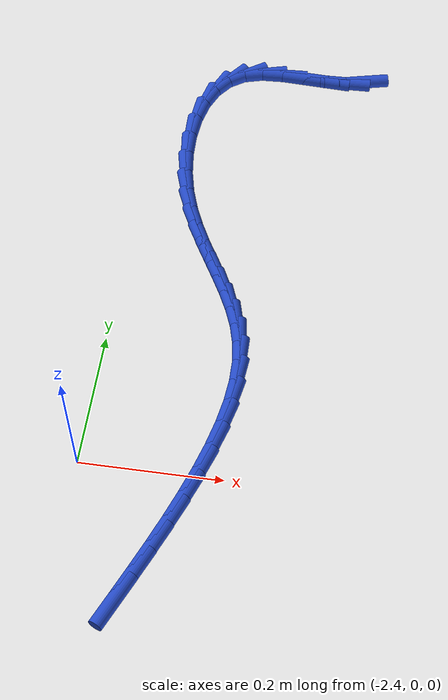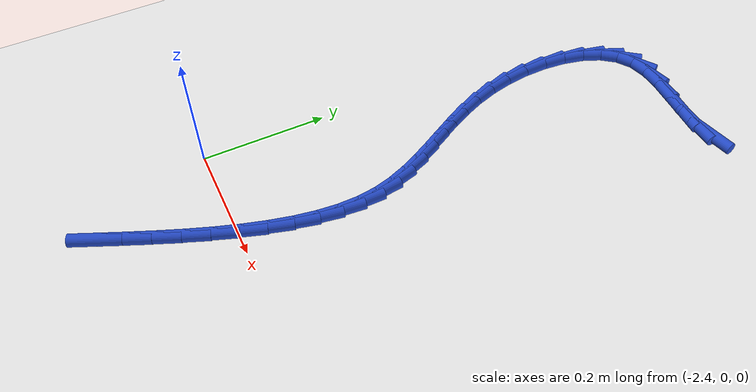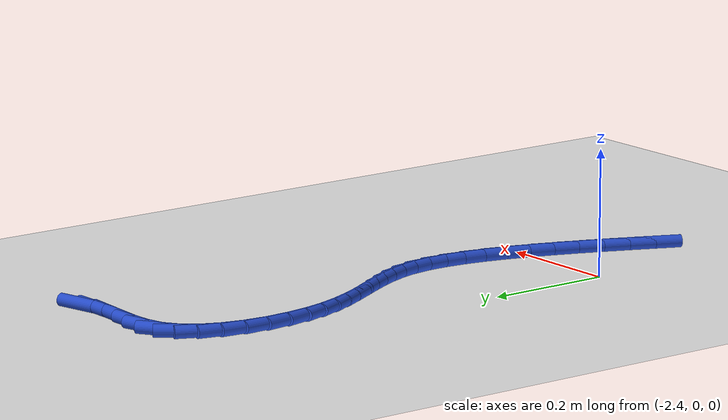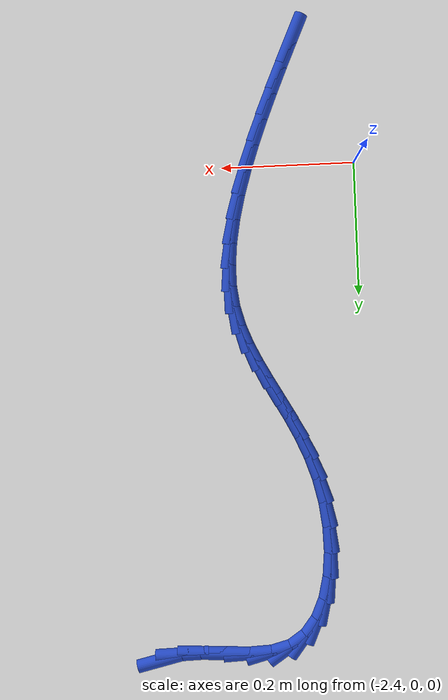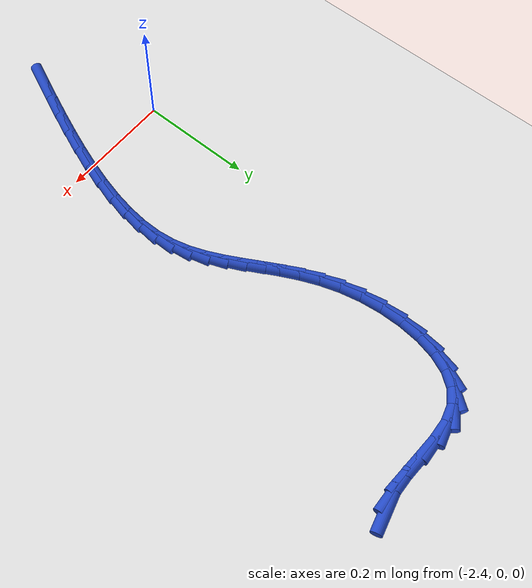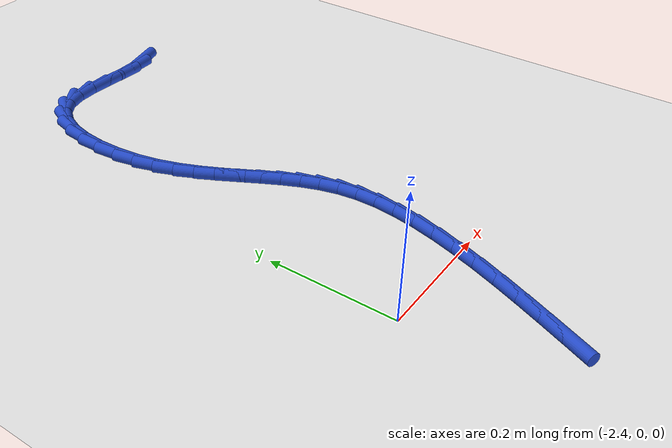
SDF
<sdf version="1.6">
 <world name="default">
  <model name="ground_plane">
   <static>1</static>
   <link name="link">
    <collision name="collision">
     <geometry><plane><normal>0 0 1</normal><size>100 100</size></plane></geometry>
     <surface><friction><ode><mu>100</mu><mu2>50</mu2></ode></friction></surface>
    </collision>
    <visual name="visual">
     <cast_shadows>0</cast_shadows>
     <geometry><plane><normal>0 0 1</normal><size>100 100</size></plane></geometry>
     <material>
      <script><uri>file://media/materials/scripts/gazebo.material</uri><name>Gazebo/WhiteGlow</name></script>
     </material>
    </visual>
   </link>
  </model>
  <model name="line">
   <link name="link_98">
    <pose>-2.082372993226611 0.7379644857235055 0.01 0 1.57 0.22834649119505881</pose>
    <collision name="collision">
     <geometry><cylinder><radius>0.01</radius><length>0.08</length></cylinder></geometry>
    </collision>
    <visual name="visual">
     <material>
      <script><name>Gazebo/Blue</name><uri>file://media/materials/scripts/gazebo.material</uri></script>
     </material>
     <geometry><cylinder><radius>0.01</radius><length>0.08</length></cylinder></geometry>
    </visual>
   </link>
   <link name="link_99">
    <pose>-2.110712108835399 0.7313784787570278 0.01 0 1.57 0.024255136708917185</pose>
    <collision name="collision">
     <geometry><cylinder><radius>0.01</radius><length>0.08</length></cylinder></geometry>
    </collision>
    <visual name="visual">
     <material>
      <script><name>Gazebo/Blue</name><uri>file://media/materials/scripts/gazebo.material</uri></script>
     </material>
     <geometry><cylinder><radius>0.01</radius><length>0.08</length></cylinder></geometry>
    </visual>
   </link>
   <link name="link_100">
    <pose>-2.143283245592538 0.7305883064202752 0.01 0 1.57 -0.057521046399457224</pose>
    <collision name="collision">
     <geometry><cylinder><radius>0.01</radius><length>0.08</length></cylinder></geometry>
    </collision>
    <visual name="visual">
     <material>
      <script><name>Gazebo/Blue</name><uri>file://media/materials/scripts/gazebo.material</uri></script>
     </material>
     <geometry><cylinder><radius>0.01</radius><length>0.08</length></cylinder></geometry>
    </visual>
   </link>
   <link name="link_101">
    <pose>-2.17804192233154 0.732589869869676 0.01 0 1.57 -0.051219101169951695</pose>
    <collision name="collision">
     <geometry><cylinder><radius>0.01</radius><length>0.08</length></cylinder></geometry>
    </collision>
    <visual name="visual">
     <material>
      <script><name>Gazebo/Blue</name><uri>file://media/materials/scripts/gazebo.material</uri></script>
     </material>
     <geometry><cylinder><radius>0.01</radius><length>0.08</length></cylinder></geometry>
    </visual>
   </link>
   <link name="link_102">
    <pose>-2.2129436578859147 0.7343790702616583 0.01 0 1.57 0.0432230013375099</pose>
    <collision name="collision">
     <geometry><cylinder><radius>0.01</radius><length>0.08</length></cylinder></geometry>
    </collision>
    <visual name="visual">
     <material>
      <script><name>Gazebo/Blue</name><uri>file://media/materials/scripts/gazebo.material</uri></script>
     </material>
     <geometry><cylinder><radius>0.01</radius><length>0.08</length></cylinder></geometry>
    </visual>
   </link>
   <link name="link_103">
    <pose>-2.2459439710891758 0.7329518087526508 0.01 0 1.57 0.25738337182317034</pose>
    <collision name="collision">
     <geometry><cylinder><radius>0.01</radius><length>0.08</length></cylinder></geometry>
    </collision>
    <visual name="visual">
     <material>
      <script><name>Gazebo/Blue</name><uri>file://media/materials/scripts/gazebo.material</uri></script>
     </material>
     <geometry><cylinder><radius>0.01</radius><length>0.08</length></cylinder></geometry>
    </visual>
   </link>
   <link name="link_104">
    <pose>-2.274998413799655 0.7253040494161294 0.01 0 1.57 0.5977553533025661</pose>
    <collision name="collision">
     <geometry><cylinder><radius>0.01</radius><length>0.08</length></cylinder></geometry>
    </collision>
    <visual name="visual">
     <material>
      <script><name>Gazebo/Blue</name><uri>file://media/materials/scripts/gazebo.material</uri></script>
     </material>
     <geometry><cylinder><radius>0.01</radius><length>0.08</length></cylinder></geometry>
    </visual>
   </link>
   <link name="link_105">
    <pose>-2.2985146517242385 0.7092930983776918 0.01 0 1.57 0.9177533596497537</pose>
    <collision name="collision">
     <geometry><cylinder><radius>0.01</radius><length>0.08</length></cylinder></geometry>
    </collision>
    <visual name="visual">
     <material>
      <script><name>Gazebo/Blue</name><uri>file://media/materials/scripts/gazebo.material</uri></script>
     </material>
     <geometry><cylinder><radius>0.01</radius><length>0.08</length></cylinder></geometry>
    </visual>
   </link>
   <link name="link_106">
    <pose>-2.316487404526655 0.6857998283190092 0.01 0 1.57 1.1613645098460448</pose>
    <collision name="collision">
     <geometry><cylinder><radius>0.01</radius><length>0.08</length></cylinder></geometry>
    </collision>
    <visual name="visual">
     <material>
      <script><name>Gazebo/Blue</name><uri>file://media/materials/scripts/gazebo.material</uri></script>
     </material>
     <geometry><cylinder><radius>0.01</radius><length>0.08</length></cylinder></geometry>
    </visual>
   </link>
   <link name="link_107">
    <pose>-2.329259437092392 0.6563681882387081 0.01 0 1.57 1.3409664675486768</pose>
    <collision name="collision">
     <geometry><cylinder><radius>0.01</radius><length>0.08</length></cylinder></geometry>
    </collision>
    <visual name="visual">
     <material>
      <script><name>Gazebo/Blue</name><uri>file://media/materials/scripts/gazebo.material</uri></script>
     </material>
     <geometry><cylinder><radius>0.01</radius><length>0.08</length></cylinder></geometry>
    </visual>
   </link>
   <link name="link_108">
    <pose>-2.33717351430694 0.6225421271354146 0.01 0 1.57 1.4783882853516774</pose>
    <collision name="collision">
     <geometry><cylinder><radius>0.01</radius><length>0.08</length></cylinder></geometry>
    </collision>
    <visual name="visual">
     <material>
      <script><name>Gazebo/Blue</name><uri>file://media/materials/scripts/gazebo.material</uri></script>
     </material>
     <geometry><cylinder><radius>0.01</radius><length>0.08</length></cylinder></geometry>
    </visual>
   </link>
   <link name="link_109">
    <pose>-2.3405724010557862 0.5858655940077543 0.01 0 1.57 -1.5504337758303675</pose>
    <collision name="collision">
     <geometry><cylinder><radius>0.01</radius><length>0.08</length></cylinder></geometry>
    </collision>
    <visual name="visual">
     <material>
      <script><name>Gazebo/Blue</name><uri>file://media/materials/scripts/gazebo.material</uri></script>
     </material>
     <geometry><cylinder><radius>0.01</radius><length>0.08</length></cylinder></geometry>
    </visual>
   </link>
   <link name="link_110">
    <pose>-2.339798862224419 0.5478825378543546 0.01 0 1.57 -1.4494423972208557</pose>
    <collision name="collision">
     <geometry><cylinder><radius>0.01</radius><length>0.08</length></cylinder></geometry>
    </collision>
    <visual name="visual">
     <material>
      <script><name>Gazebo/Blue</name><uri>file://media/materials/scripts/gazebo.material</uri></script>
     </material>
     <geometry><cylinder><radius>0.01</radius><length>0.08</length></cylinder></geometry>
    </visual>
   </link>
   <link name="link_111">
    <pose>-2.3351956626983283 0.5101369076738415 0.01 0 1.57 -1.3496500362377342</pose>
    <collision name="collision">
     <geometry><cylinder><radius>0.01</radius><length>0.08</length></cylinder></geometry>
    </collision>
    <visual name="visual">
     <material>
      <script><name>Gazebo/Blue</name><uri>file://media/materials/scripts/gazebo.material</uri></script>
     </material>
     <geometry><cylinder><radius>0.01</radius><length>0.08</length></cylinder></geometry>
    </visual>
   </link>
   <link name="link_112">
    <pose>-2.327107709799297 0.4741622049599901 0.01 0 1.57 -1.2504720265986438</pose>
    <collision name="collision">
     <geometry><cylinder><radius>0.01</radius><length>0.08</length></cylinder></geometry>
    </collision>
    <visual name="visual">
     <material>
      <script><name>Gazebo/Blue</name><uri>file://media/materials/scripts/gazebo.material</uri></script>
     </material>
     <geometry><cylinder><radius>0.01</radius><length>0.08</length></cylinder></geometry>
    </visual>
   </link>
   <link name="link_113">
    <pose>-2.316028685460143 0.44076643777023444 0.01 0 1.57 -1.1668668810124845</pose>
    <collision name="collision">
     <geometry><cylinder><radius>0.01</radius><length>0.08</length></cylinder></geometry>
    </collision>
    <visual name="visual">
     <material>
      <script><name>Gazebo/Blue</name><uri>file://media/materials/scripts/gazebo.material</uri></script>
     </material>
     <geometry><cylinder><radius>0.01</radius><length>0.08</length></cylinder></geometry>
    </visual>
   </link>
   <link name="link_114">
    <pose>-2.302695323195141 0.40957238285262476 0.01 0 1.57 -1.10473496936146</pose>
    <collision name="collision">
     <geometry><cylinder><radius>0.01</radius><length>0.08</length></cylinder></geometry>
    </collision>
    <visual name="visual">
     <material>
      <script><name>Gazebo/Blue</name><uri>file://media/materials/scripts/gazebo.material</uri></script>
     </material>
     <geometry><cylinder><radius>0.01</radius><length>0.08</length></cylinder></geometry>
    </visual>
   </link>
   <link name="link_115">
    <pose>-2.287866790322985 0.38009341940580776 0.01 0 1.57 -1.0672260196917696</pose>
    <collision name="collision">
     <geometry><cylinder><radius>0.01</radius><length>0.08</length></cylinder></geometry>
    </collision>
    <visual name="visual">
     <material>
      <script><name>Gazebo/Blue</name><uri>file://media/materials/scripts/gazebo.material</uri></script>
     </material>
     <geometry><cylinder><radius>0.01</radius><length>0.08</length></cylinder></geometry>
    </visual>
   </link>
   <link name="link_116">
    <pose>-2.2723022541623714 0.3518429266284306 0.01 0 1.57 -1.056537647933757</pose>
    <collision name="collision">
     <geometry><cylinder><radius>0.01</radius><length>0.08</length></cylinder></geometry>
    </collision>
    <visual name="visual">
     <material>
      <script><name>Gazebo/Blue</name><uri>file://media/materials/scripts/gazebo.material</uri></script>
     </material>
     <geometry><cylinder><radius>0.01</radius><length>0.08</length></cylinder></geometry>
    </visual>
   </link>
   <link name="link_117">
    <pose>-2.256760882031995 0.3243342837191399 0.01 0 1.57 -1.074465069633949</pose>
    <collision name="collision">
     <geometry><cylinder><radius>0.01</radius><length>0.08</length></cylinder></geometry>
    </collision>
    <visual name="visual">
     <material>
      <script><name>Gazebo/Blue</name><uri>file://media/materials/scripts/gazebo.material</uri></script>
     </material>
     <geometry><cylinder><radius>0.01</radius><length>0.08</length></cylinder></geometry>
    </visual>
   </link>
   <link name="link_118">
    <pose>-2.242001841250551 0.2970808698765836 0.01 0 1.57 -1.122542210322693</pose>
    <collision name="collision">
     <geometry><cylinder><radius>0.01</radius><length>0.08</length></cylinder></geometry>
    </collision>
    <visual name="visual">
     <material>
      <script><name>Gazebo/Blue</name><uri>file://media/materials/scripts/gazebo.material</uri></script>
     </material>
     <geometry><cylinder><radius>0.01</radius><length>0.08</length></cylinder></geometry>
    </visual>
   </link>
   <link name="link_119">
    <pose>-2.228784299136736 0.2695960642994085 0.01 0 1.57 -1.2014732704470679</pose>
    <collision name="collision">
     <geometry><cylinder><radius>0.01</radius><length>0.08</length></cylinder></geometry>
    </collision>
    <visual name="visual">
     <material>
      <script><name>Gazebo/Blue</name><uri>file://media/materials/scripts/gazebo.material</uri></script>
     </material>
     <geometry><cylinder><radius>0.01</radius><length>0.08</length></cylinder></geometry>
    </visual>
   </link>
   <link name="link_120">
    <pose>-2.217867423009243 0.24139324618626187 0.01 0 1.57 -1.3097160145641464</pose>
    <collision name="collision">
     <geometry><cylinder><radius>0.01</radius><length>0.08</length></cylinder></geometry>
    </collision>
    <visual name="visual">
     <material>
      <script><name>Gazebo/Blue</name><uri>file://media/materials/scripts/gazebo.material</uri></script>
     </material>
     <geometry><cylinder><radius>0.01</radius><length>0.08</length></cylinder></geometry>
    </visual>
   </link>
   <link name="link_121">
    <pose>-2.2100103801867705 0.21198579473579068 0.01 0 1.57 -1.4398321201363131</pose>
    <collision name="collision">
     <geometry><cylinder><radius>0.01</radius><length>0.08</length></cylinder></geometry>
    </collision>
    <visual name="visual">
     <material>
      <script><name>Gazebo/Blue</name><uri>file://media/materials/scripts/gazebo.material</uri></script>
     </material>
     <geometry><cylinder><radius>0.01</radius><length>0.08</length></cylinder></geometry>
    </visual>
   </link>
   <link name="link_122">
    <pose>-2.2059184668456706 0.18092011402660998 0.01 0 1.57 -1.5625714356276101</pose>
    <collision name="collision">
     <geometry><cylinder><radius>0.01</radius><length>0.08</length></cylinder></geometry>
    </collision>
    <visual name="visual">
     <material>
      <script><name>Gazebo/Blue</name><uri>file://media/materials/scripts/gazebo.material</uri></script>
     </material>
     <geometry><cylinder><radius>0.01</radius><length>0.08</length></cylinder></geometry>
    </visual>
   </link>
   <link name="link_123">
    <pose>-2.20564884736438 0.14813993542425732 0.01 0 1.57 1.4782866486761157</pose>
    <collision name="collision">
     <geometry><cylinder><radius>0.01</radius><length>0.08</length></cylinder></geometry>
    </collision>
    <visual name="visual">
     <material>
      <script><name>Gazebo/Blue</name><uri>file://media/materials/scripts/gazebo.material</uri></script>
     </material>
     <geometry><cylinder><radius>0.01</radius><length>0.08</length></cylinder></geometry>
    </visual>
   </link>
   <link name="link_124">
    <pose>-2.2088299071443727 0.1138518466888383 0.01 0 1.57 1.3968647717767044</pose>
    <collision name="collision">
     <geometry><cylinder><radius>0.01</radius><length>0.08</length></cylinder></geometry>
    </collision>
    <visual name="visual">
     <material>
      <script><name>Gazebo/Blue</name><uri>file://media/materials/scripts/gazebo.material</uri></script>
     </material>
     <geometry><cylinder><radius>0.01</radius><length>0.08</length></cylinder></geometry>
    </visual>
   </link>
   <link name="link_125">
    <pose>-2.215082392174799 0.07826711880535453 0.01 0 1.57 1.3315459270198577</pose>
    <collision name="collision">
     <geometry><cylinder><radius>0.01</radius><length>0.08</length></cylinder></geometry>
    </collision>
    <visual name="visual">
     <material>
      <script><name>Gazebo/Blue</name><uri>file://media/materials/scripts/gazebo.material</uri></script>
     </material>
     <geometry><cylinder><radius>0.01</radius><length>0.08</length></cylinder></geometry>
    </visual>
   </link>
   <link name="link_126">
    <pose>-2.2240270484448095 0.04159702275880747 0.01 0 1.57 1.2794784439753353</pose>
    <collision name="collision">
     <geometry><cylinder><radius>0.01</radius><length>0.08</length></cylinder></geometry>
    </collision>
    <visual name="visual">
     <material>
      <script><name>Gazebo/Blue</name><uri>file://media/materials/scripts/gazebo.material</uri></script>
     </material>
     <geometry><cylinder><radius>0.01</radius><length>0.08</length></cylinder></geometry>
    </visual>
   </link>
   <link name="link_127">
    <pose>-2.2352846219435536 0.004052829534200034 0.01 0 1.57 1.2383532279342762</pose>
    <collision name="collision">
     <geometry><cylinder><radius>0.01</radius><length>0.08</length></cylinder></geometry>
    </collision>
    <visual name="visual">
     <material>
      <script><name>Gazebo/Blue</name><uri>file://media/materials/scripts/gazebo.material</uri></script>
     </material>
     <geometry><cylinder><radius>0.01</radius><length>0.08</length></cylinder></geometry>
    </visual>
   </link>
   <link name="link_128">
    <pose>-2.2484758586601816 -0.0341541898834664 0.01 0 1.57 1.2063979581891113</pose>
    <collision name="collision">
     <geometry><cylinder><radius>0.01</radius><length>0.08</length></cylinder></geometry>
    </collision>
    <visual name="visual">
     <material>
      <script><name>Gazebo/Blue</name><uri>file://media/materials/scripts/gazebo.material</uri></script>
     </material>
     <geometry><cylinder><radius>0.01</radius><length>0.08</length></cylinder></geometry>
    </visual>
   </link>
   <link name="link_129">
    <pose>-2.263221504583846 -0.07281276450919004 0.01 0 1.57 1.1823095560106058</pose>
    <collision name="collision">
     <geometry><cylinder><radius>0.01</radius><length>0.08</length></cylinder></geometry>
    </collision>
    <visual name="visual">
     <material>
      <script><name>Gazebo/Blue</name><uri>file://media/materials/scripts/gazebo.material</uri></script>
     </material>
     <geometry><cylinder><radius>0.01</radius><length>0.08</length></cylinder></geometry>
    </visual>
   </link>
   <link name="link_130">
    <pose>-2.2791423057036946 -0.11171162335796897 0.01 0 1.57 1.1651814557504776</pose>
    <collision name="collision">
     <geometry><cylinder><radius>0.01</radius><length>0.08</length></cylinder></geometry>
    </collision>
    <visual name="visual">
     <material>
      <script><name>Gazebo/Blue</name><uri>file://media/materials/scripts/gazebo.material</uri></script>
     </material>
     <geometry><cylinder><radius>0.01</radius><length>0.08</length></cylinder></geometry>
    </visual>
   </link>
   <link name="link_131">
    <pose>-2.295859008008878 -0.15063949544480199 0.01 0 1.57 1.1544469463166676</pose>
    <collision name="collision">
     <geometry><cylinder><radius>0.01</radius><length>0.08</length></cylinder></geometry>
    </collision>
    <visual name="visual">
     <material>
      <script><name>Gazebo/Blue</name><uri>file://media/materials/scripts/gazebo.material</uri></script>
     </material>
     <geometry><cylinder><radius>0.01</radius><length>0.08</length></cylinder></geometry>
    </visual>
   </link>
   <link name="link_132">
    <pose>-2.312992357488548 -0.18938510978468603 0.01 0 1.57 1.1498455653795936</pose>
    <collision name="collision">
     <geometry><cylinder><radius>0.01</radius><length>0.08</length></cylinder></geometry>
    </collision>
    <visual name="visual">
     <material>
      <script><name>Gazebo/Blue</name><uri>file://media/materials/scripts/gazebo.material</uri></script>
     </material>
     <geometry><cylinder><radius>0.01</radius><length>0.08</length></cylinder></geometry>
    </visual>
   </link>
  </model>
 </world>
</sdf>
